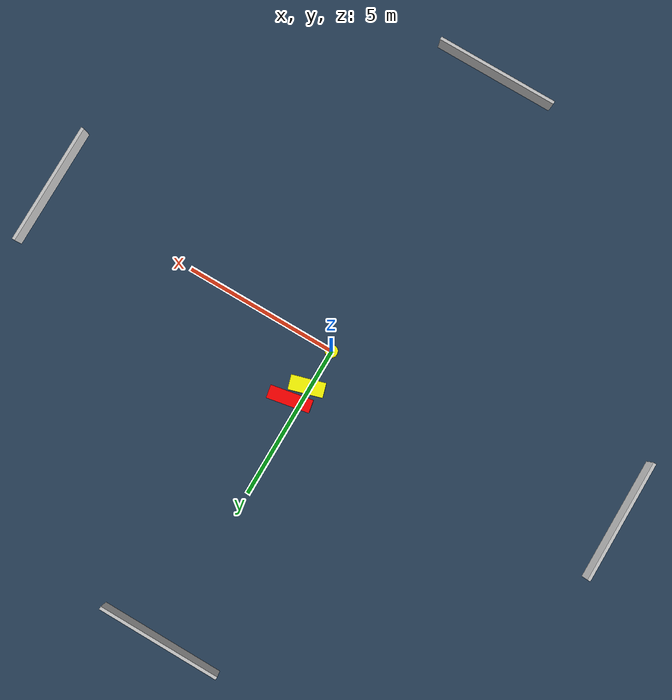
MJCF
<?xml version="1.0" ?>
<mujoco model="generated_environment">
  <option timestep="0.01" integrator="RK4" cone="elliptic"/>
  <default>
    <geom density="1"/>
  </default>
  <asset>
    <texture builtin="gradient" height="3072" name="skybox" rgb1="0.3 0.5 0.7" rgb2="0 0 0" type="skybox" width="512"/>
    <texture builtin="checker" height="300" name="groundplane" rgb1="0.2 0.3 0.4" rgb2="0.1 0.2 0.3" type="2d" width="300"/>
    <material name="groundplane" reflectance="0.2" texrepeat="5 5" texture="groundplane"/>
  </asset>
  <worldbody>
    <light dir="0 0 -1" directional="true" pos="0 0 1.5"/>
    <geom condim="3" friction="0.5 0.005 0.001" material="groundplane" name="floor" pos="0 0 0" size="0 0 0.05" type="plane"/>
    <body name="walls">
      <geom name="wall_1" condim="4" pos="-10.0 0.0 0.3" rgba="0.800000011920929 0.800000011920929 0.800000011920929 1.0" size="0.05 2.0 0.3" type="box"/>
      <geom name="wall_2" condim="4" pos="10.0 0.0 0.3" rgba="0.800000011920929 0.800000011920929 0.800000011920929 1.0" size="0.05 2.0 0.3" type="box"/>
      <geom name="wall_3" condim="4" pos="0.0 -10.0 0.3" rgba="0.800000011920929 0.800000011920929 0.800000011920929 1.0" size="2.0 0.05 0.3" type="box"/>
      <geom name="wall_4" condim="4" pos="0.0 10.0 0.3" rgba="0.800000011920929 0.800000011920929 0.800000011920929 1.0" size="2.0 0.05 0.3" type="box"/>
    </body>
    <body name="robot">
      <joint name="joint_x" type="slide" pos="0 0 0" axis="1 0 0"/>
      <joint name="joint_y" type="slide" pos="0 0 0" axis="0 1 0"/>
      <geom name="robot" type="cylinder" pos="0.0 0.0 0.2" size="0.2 0.2 0.0" mass="5.0" friction="1.0 0.005 0.0001" condim="4" rgba="1.0 1.0 0.0 1.0"/>
    </body>
    <body name="obstacle_1_movable">
      <geom name="obstacle_1_movable" condim="4" pos="0.08751182691195769 1.2947149962578735 0.3" euler="0 0 16.424809649650726" friction="0.0 0.005 0.001" rgba="1.0 1.0 0.0 1.0" size="0.5416537569460527 0.23197247780664448 0.3" type="box" mass="0.1"/>
      <joint type="free"/>
    </body>
    <body name="obstacle_2_static">
      <geom name="obstacle_2_static" condim="4" pos="0.33536475289937207 1.88352468326563 0.3" euler="0 0 10.520156812126817" friction="0.0 0.005 0.001" rgba="1.0 0.0 0.0 1.0" size="0.6782106599347466 0.2081821019708393 0.3" type="box"/>
    </body>
  </worldbody>
  <actuator>
    <motor name="actuator_x" joint="joint_x" gear="1" ctrlrange="-1 1"/>
    <motor name="actuator_y" joint="joint_y" gear="1" ctrlrange="-1 1"/>
  </actuator>
</mujoco>
